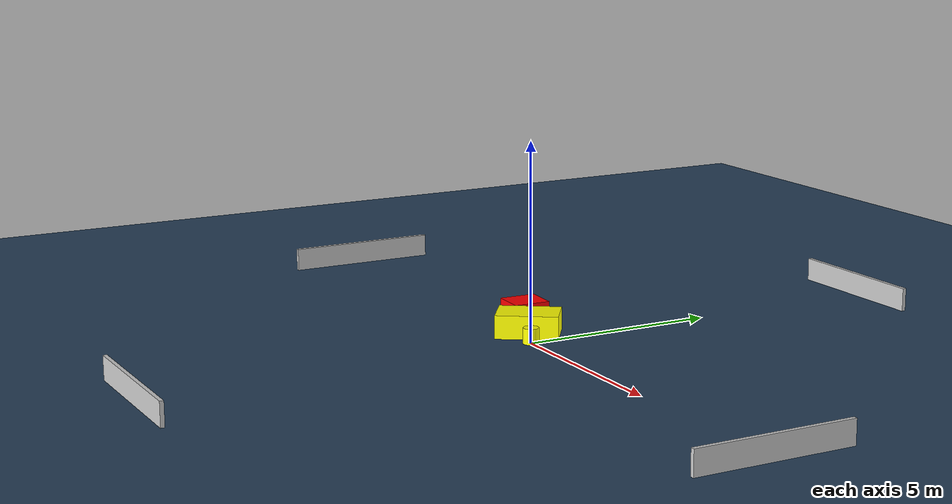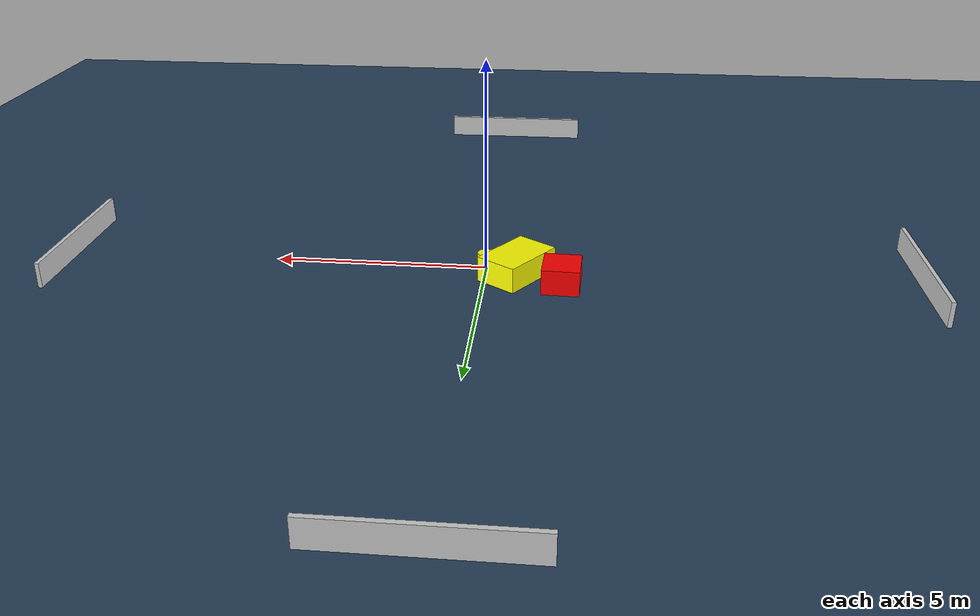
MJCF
<?xml version="1.0" ?>
<mujoco model="generated_environment">
  <option timestep="0.01" integrator="RK4" cone="elliptic"/>
  <default>
    <geom density="1"/>
  </default>
  <asset>
    <texture builtin="gradient" height="3072" name="skybox" rgb1="0.3 0.5 0.7" rgb2="0 0 0" type="skybox" width="512"/>
    <texture builtin="checker" height="300" name="groundplane" rgb1="0.2 0.3 0.4" rgb2="0.1 0.2 0.3" type="2d" width="300"/>
    <material name="groundplane" reflectance="0.2" texrepeat="5 5" texture="groundplane"/>
  </asset>
  <worldbody>
    <light dir="0 0 -1" directional="true" pos="0 0 1.5"/>
    <geom condim="3" friction="0.5 0.005 0.001" material="groundplane" name="floor" pos="0 0 0" size="0 0 0.05" type="plane"/>
    <body name="walls">
      <geom name="wall_1" condim="4" pos="-10.0 0.0 0.3" rgba="0.800000011920929 0.800000011920929 0.800000011920929 1.0" size="0.05 2.0 0.3" type="box"/>
      <geom name="wall_2" condim="4" pos="10.0 0.0 0.3" rgba="0.800000011920929 0.800000011920929 0.800000011920929 1.0" size="0.05 2.0 0.3" type="box"/>
      <geom name="wall_3" condim="4" pos="0.0 -10.0 0.3" rgba="0.800000011920929 0.800000011920929 0.800000011920929 1.0" size="2.0 0.05 0.3" type="box"/>
      <geom name="wall_4" condim="4" pos="0.0 10.0 0.3" rgba="0.800000011920929 0.800000011920929 0.800000011920929 1.0" size="2.0 0.05 0.3" type="box"/>
    </body>
    <body name="robot">
      <joint name="joint_x" type="slide" pos="0 0 0" axis="1 0 0"/>
      <joint name="joint_y" type="slide" pos="0 0 0" axis="0 1 0"/>
      <geom name="robot" type="cylinder" pos="0.0 0.0 0.2" size="0.2 0.2 0.0" mass="5.0" friction="1.0 0.005 0.0001" condim="4" rgba="1.0 1.0 0.0 1.0"/>
    </body>
    <body name="obstacle_1_movable">
      <geom name="obstacle_1_movable" condim="4" pos="-0.7422568433413823 0.34017439676953404 0.3" euler="0 0 325.18788582229433" friction="0.0 0.005 0.001" rgba="1.0 1.0 0.0 1.0" size="0.515497133152538 0.785995359131237 0.3" type="box" mass="0.1"/>
      <joint type="free"/>
    </body>
    <body name="obstacle_2_static">
      <geom name="obstacle_2_static" condim="4" pos="-1.7954398459309602 0.8213689214925098 0.3" euler="0 0 267.54546521134245" friction="0.0 0.005 0.001" rgba="1.0 0.0 0.0 1.0" size="0.4730362196297675 0.4333126774747404 0.3" type="box"/>
    </body>
  </worldbody>
  <actuator>
    <motor name="actuator_x" joint="joint_x" gear="1" ctrlrange="-1 1"/>
    <motor name="actuator_y" joint="joint_y" gear="1" ctrlrange="-1 1"/>
  </actuator>
</mujoco>
